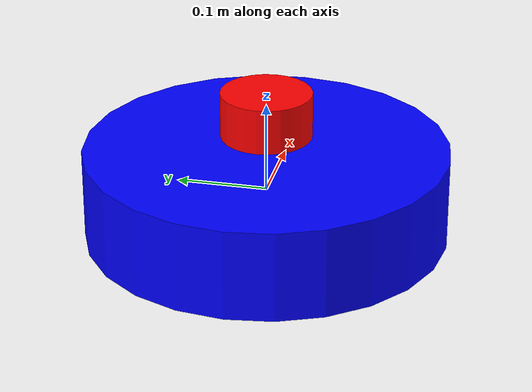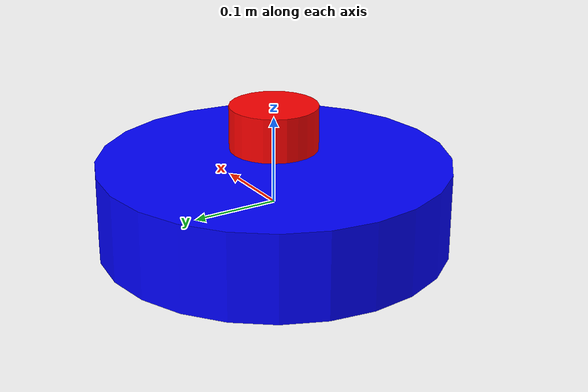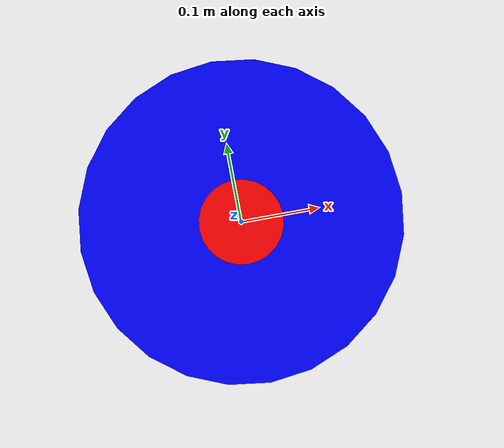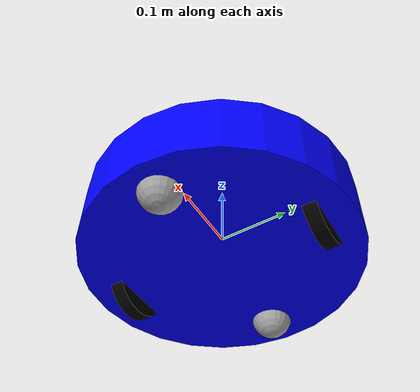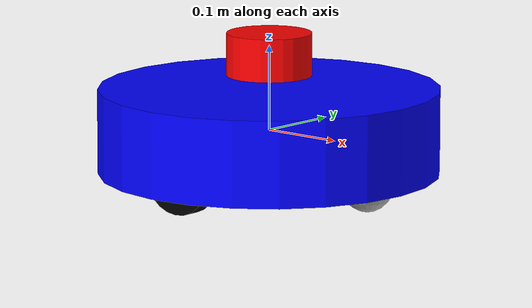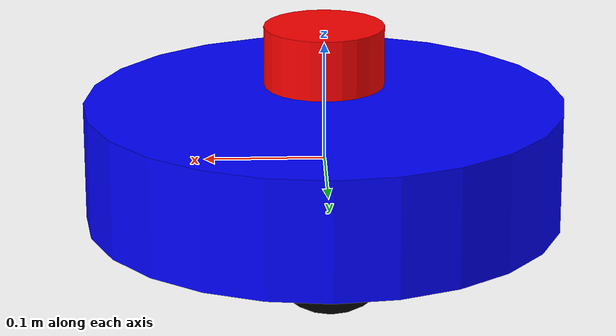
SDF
<?xml version="1.0" ?>
<sdf version="1.12">
  <model name="neos">
    <link name="base_link">
      <inertial>
        <pose>3.273063162220391e-19 0 3.7735849056559689e-07 0 0 0</pose>
        <mass>5.2999999999999989</mass>
        <inertia>
          <ixx>0.10151482001924531</ixx>
          <ixy>0</ixy>
          <ixz>6.546126324433135e-25</ixz>
          <iyy>0.1060148200192453</iyy>
          <iyz>0</iyz>
          <izz>0.1048</izz>
        </inertia>
      </inertial>
      <collision name="base_link_collision">
        <pose>0 0 0 0 0 0</pose>
        <geometry>
          <cylinder>
            <length>0.10000000000000001</length>
            <radius>0.20000000000000001</radius>
          </cylinder>
        </geometry>
      </collision>
      <collision name="base_link_fixed_joint_lump__front_caster_collision_1">
        <pose>0.14999999999999999 0 -0.044990000000000002 0 0 0</pose>
        <geometry>
          <sphere>
            <radius>0.029999999999999999</radius>
          </sphere>
        </geometry>
      </collision>
      <collision name="base_link_fixed_joint_lump__lidar_link_collision_2">
        <pose>0 0 0.089999999999999997 0 0 0</pose>
        <geometry>
          <cylinder>
            <length>0.050000000000000003</length>
            <radius>0.050000000000000003</radius>
          </cylinder>
        </geometry>
        <surface>
          <contact>
            <ode/>
          </contact>
          <friction>
            <ode/>
          </friction>
        </surface>
      </collision>
      <collision name="base_link_fixed_joint_lump__rear_caster_collision_3">
        <pose>-0.14999999999999999 0 -0.044990000000000002 0 0 0</pose>
        <geometry>
          <sphere>
            <radius>0.029999999999999999</radius>
          </sphere>
        </geometry>
      </collision>
      <visual name="base_link_visual">
        <pose>0 0 0 0 0 0</pose>
        <geometry>
          <cylinder>
            <length>0.10000000000000001</length>
            <radius>0.20000000000000001</radius>
          </cylinder>
        </geometry>
        <material>
          <diffuse>0 0 1 1</diffuse>
          <ambient>0 0 1 1</ambient>
        </material>
      </visual>
      <visual name="base_link_fixed_joint_lump__front_caster_visual_1">
        <pose>0.14999999999999999 0 -0.044990000000000002 0 0 0</pose>
        <geometry>
          <sphere>
            <radius>0.029999999999999999</radius>
          </sphere>
        </geometry>
        <material>
          <diffuse>0.625 0.625 0.625 1</diffuse>
          <ambient>0.625 0.625 0.625 1</ambient>
        </material>
      </visual>
      <visual name="base_link_fixed_joint_lump__lidar_link_visual_2">
        <pose>0 0 0.089999999999999997 0 0 0</pose>
        <geometry>
          <cylinder>
            <length>0.050000000000000003</length>
            <radius>0.050000000000000003</radius>
          </cylinder>
        </geometry>
        <material>
          <diffuse>1 0 0 1</diffuse>
          <ambient>1 0 0 1</ambient>
        </material>
      </visual>
      <visual name="base_link_fixed_joint_lump__rear_caster_visual_3">
        <pose>-0.14999999999999999 0 -0.044990000000000002 0 0 0</pose>
        <geometry>
          <sphere>
            <radius>0.029999999999999999</radius>
          </sphere>
        </geometry>
        <material>
          <diffuse>0.625 0.625 0.625 1</diffuse>
          <ambient>0.625 0.625 0.625 1</ambient>
        </material>
      </visual>
      <sensor name="lidar_sensor" type="gpu_lidar">
        <topic>/scan</topic>
        <update_rate>30</update_rate>
        <visualize>true</visualize>
        <ray>
          <scan>
            <horizontal>
              <samples>720</samples>
              <resolution>1</resolution>
              <min_angle>-1.5708</min_angle>
              <max_angle>1.5708</max_angle>
            </horizontal>
            <vertical>
              <samples>1</samples>
              <resolution>0.01</resolution>
              <min_angle>0</min_angle>
              <max_angle>0</max_angle>
            </vertical>
          </scan>
          <range>
            <min>0.10000000000000001</min>
            <max>7</max>
            <resolution>0.01</resolution>
          </range>
          <noise>
            <type>gaussian</type>
            <mean>0</mean>
            <stddev>0.01</stddev>
          </noise>
        </ray>
        <always_on>true</always_on>
        <pose>0 0 0.089999999999999997 0 0 0</pose>
      </sensor>
    </link>
    <joint name="left_wheel_joint" type="revolute">
      <pose relative_to="base_link">0 0.14999999999999999 -0.025000000000000001 1.5708 0 0</pose>
      <parent>base_link</parent>
      <child>left_wheel</child>
      <axis>
        <xyz>0 0 -1</xyz>
        <limit>
          <lower>-inf</lower>
          <upper>inf</upper>
        </limit>
        <dynamics>
          <spring_reference>0</spring_reference>
          <spring_stiffness>0</spring_stiffness>
        </dynamics>
      </axis>
    </joint>
    <link name="left_wheel">
      <pose relative_to="left_wheel_joint">0 0 0 0 0 0</pose>
      <inertial>
        <pose>0 0 0 0 0 0</pose>
        <mass>0.5</mass>
        <inertia>
          <ixx>0.001</ixx>
          <ixy>0</ixy>
          <ixz>0</ixz>
          <iyy>0.001</iyy>
          <iyz>0</iyz>
          <izz>0.001</izz>
        </inertia>
      </inertial>
      <collision name="left_wheel_collision">
        <pose>0 0 0 0 0 0</pose>
        <geometry>
          <cylinder>
            <length>0.02</length>
            <radius>0.050000000000000003</radius>
          </cylinder>
        </geometry>
      </collision>
      <visual name="left_wheel_visual">
        <pose>0 0 0 0 0 0</pose>
        <geometry>
          <cylinder>
            <length>0.02</length>
            <radius>0.050000000000000003</radius>
          </cylinder>
        </geometry>
        <material>
          <diffuse>0 0 0 1</diffuse>
          <ambient>0 0 0 1</ambient>
        </material>
      </visual>
    </link>
    <joint name="right_wheel_joint" type="revolute">
      <pose relative_to="base_link">0 -0.14999999999999999 -0.025000000000000001 1.5708 0 0</pose>
      <parent>base_link</parent>
      <child>right_wheel</child>
      <axis>
        <xyz>0 0 -1</xyz>
        <limit>
          <lower>-inf</lower>
          <upper>inf</upper>
        </limit>
        <dynamics>
          <spring_reference>0</spring_reference>
          <spring_stiffness>0</spring_stiffness>
        </dynamics>
      </axis>
    </joint>
    <link name="right_wheel">
      <pose relative_to="right_wheel_joint">0 0 0 0 0 0</pose>
      <inertial>
        <pose>0 0 0 0 0 0</pose>
        <mass>0.5</mass>
        <inertia>
          <ixx>0.001</ixx>
          <ixy>0</ixy>
          <ixz>0</ixz>
          <iyy>0.001</iyy>
          <iyz>0</iyz>
          <izz>0.001</izz>
        </inertia>
      </inertial>
      <collision name="right_wheel_collision">
        <pose>0 0 0 0 0 0</pose>
        <geometry>
          <cylinder>
            <length>0.02</length>
            <radius>0.050000000000000003</radius>
          </cylinder>
        </geometry>
      </collision>
      <visual name="right_wheel_visual">
        <pose>0 0 0 0 0 0</pose>
        <geometry>
          <cylinder>
            <length>0.02</length>
            <radius>0.050000000000000003</radius>
          </cylinder>
        </geometry>
        <material>
          <diffuse>0 0 0 1</diffuse>
          <ambient>0 0 0 1</ambient>
        </material>
      </visual>
    </link>
    <frame name="front_caster_joint" attached_to="base_link">
      <pose>0.14999999999999999 0 -0.044990000000000002 0 0 0</pose>
    </frame>
    <frame name="front_caster" attached_to="front_caster_joint">
      <pose>0 0 0 0 0 0</pose>
    </frame>
    <frame name="lidar_joint" attached_to="base_link">
      <pose>0 0 0.089999999999999997 0 0 0</pose>
    </frame>
    <frame name="lidar_link" attached_to="lidar_joint">
      <pose>0 0 0 0 0 0</pose>
    </frame>
    <frame name="rear_caster_joint" attached_to="base_link">
      <pose>-0.14999999999999999 0 -0.044990000000000002 0 0 0</pose>
    </frame>
    <frame name="rear_caster" attached_to="rear_caster_joint">
      <pose>0 0 0 0 0 0</pose>
    </frame>
    <plugin filename="gz-sim-diff-drive-system" name="gz::sim::systems::DiffDrive">
      <left_joint>left_wheel_joint</left_joint>
      <right_joint>right_wheel_joint</right_joint>
      <wheel_separation>0.3</wheel_separation>
      <wheel_radius>0.05</wheel_radius>
      <odom_publish_frequency>30</odom_publish_frequency>
      <odom_topic>odometry</odom_topic>
      <max_linear_acceleration>0.3</max_linear_acceleration>
      <min_linear_acceleration>-0.3</min_linear_acceleration>
      <max_angular_acceleration>2.0</max_angular_acceleration>
      <min_angular_acceleration>-2.0</min_angular_acceleration>
      <max_linear_velocity>1.0</max_linear_velocity>
      <min_linear_velocity>-1.0</min_linear_velocity>
      <max_angular_velocity>1.5</max_angular_velocity>
      <min_angular_velocity>-1.5</min_angular_velocity>
      <topic>cmd_vel</topic>
    </plugin>
  </model>
</sdf>
